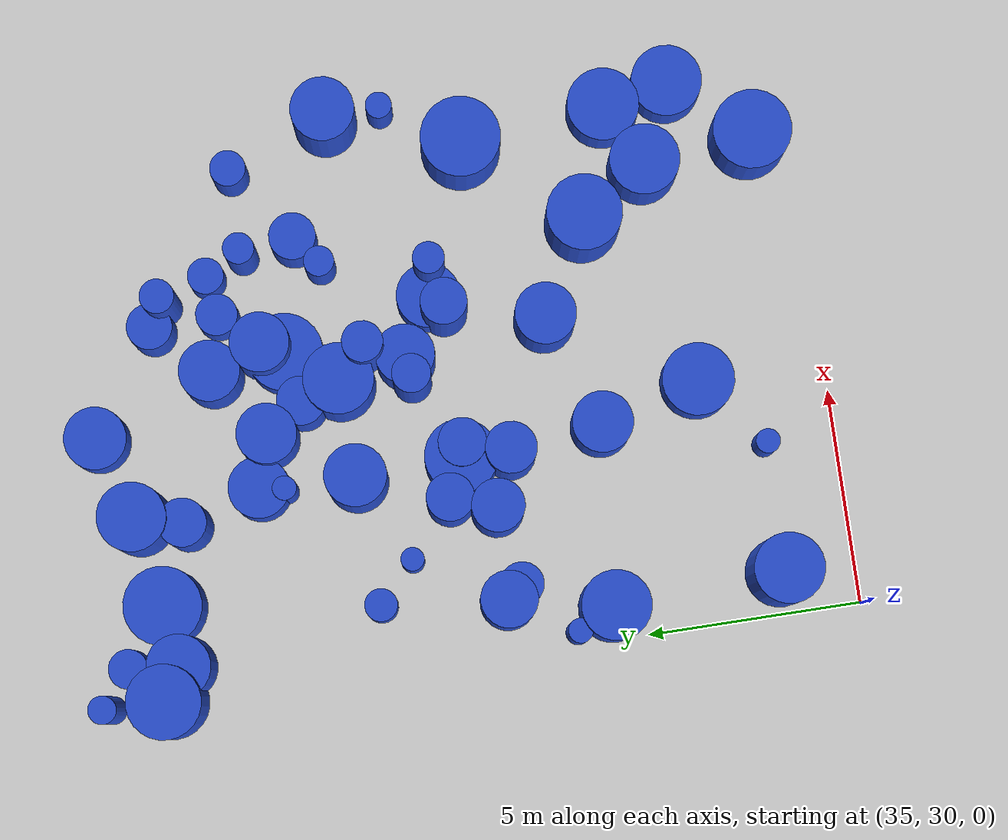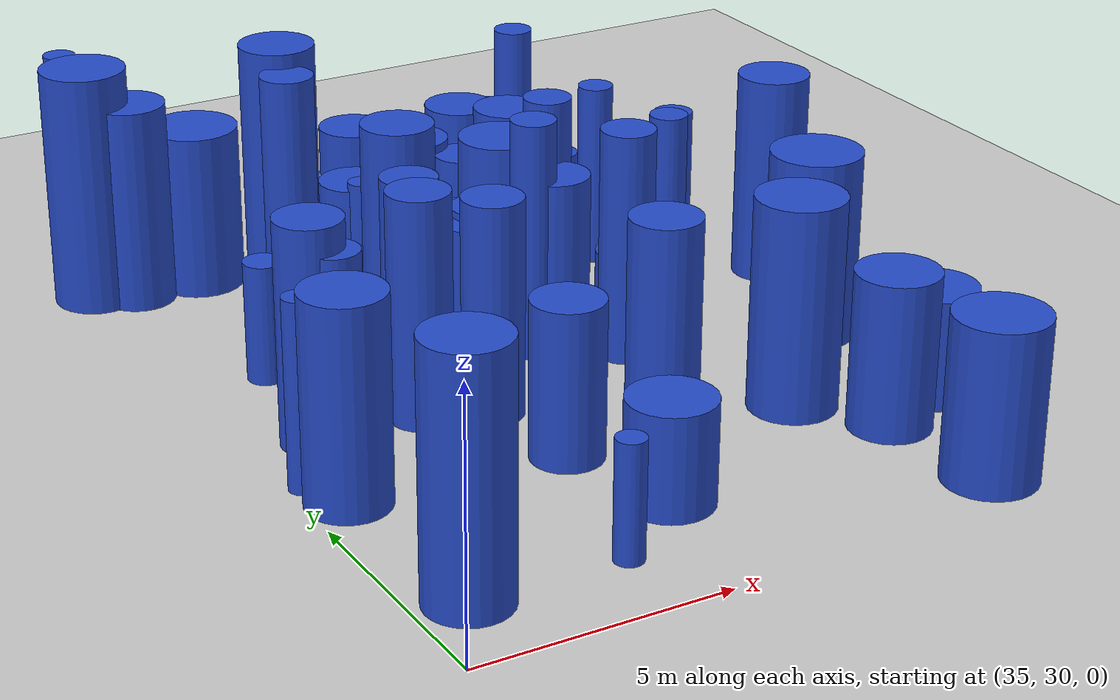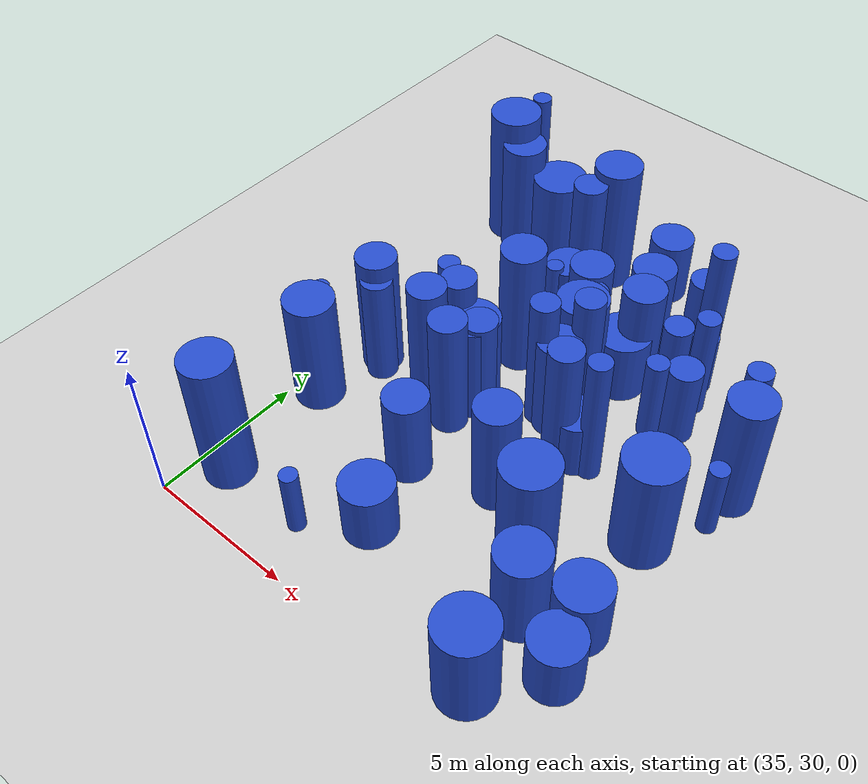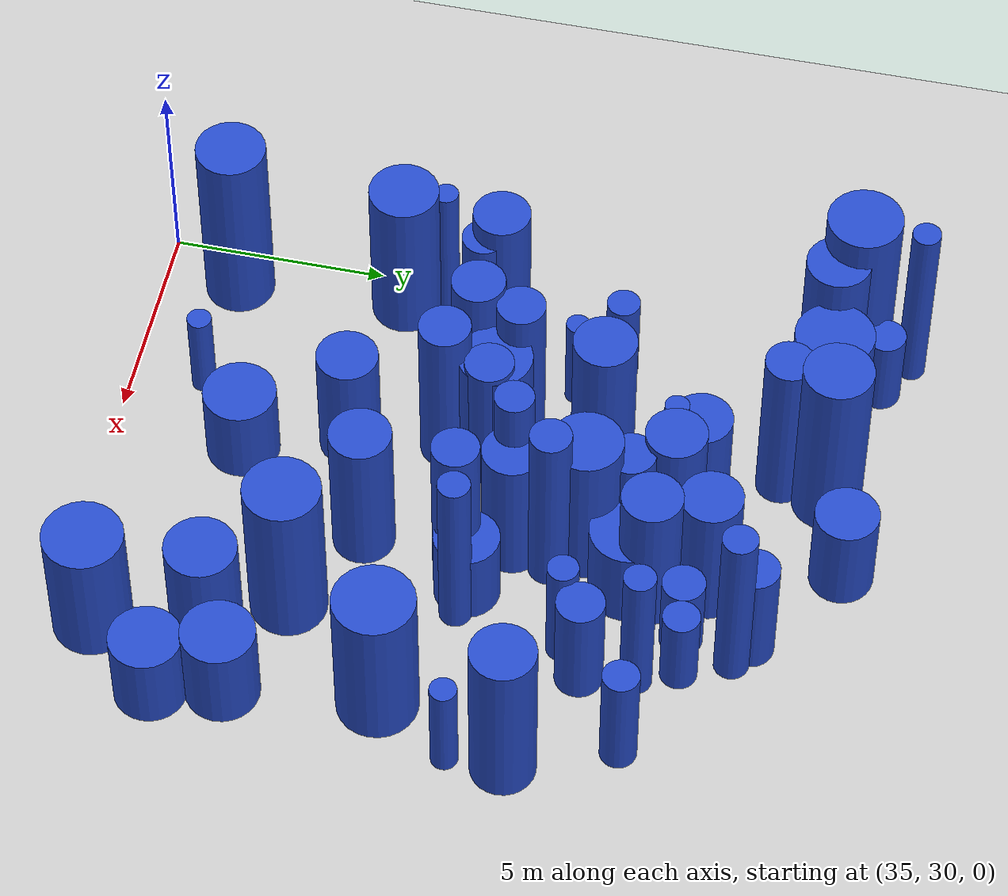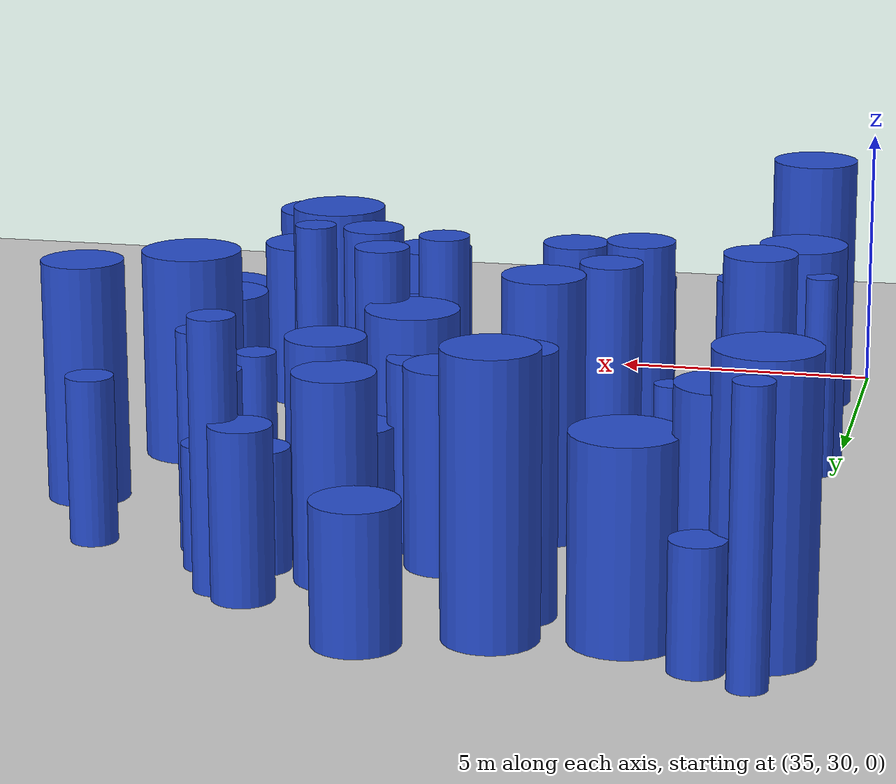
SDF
<sdf version="1.6">
 <world name="default">
  <model name="ground_plane">
   <static>1</static>
   <link name="link">
    <collision name="collision">
     <geometry><plane><normal>0 0 1</normal><size>100 100</size></plane></geometry>
     <surface><friction><ode><mu>100</mu><mu2>50</mu2></ode></friction></surface>
    </collision>
    <visual name="visual">
     <cast_shadows>0</cast_shadows>
     <geometry><plane><normal>0 0 1</normal><size>100 100</size></plane></geometry>
     <material>
      <script><uri>file://media/materials/scripts/gazebo.material</uri><name>Gazebo/Grey</name></script>
     </material>
    </visual>
   </link>
  </model>
  <model name="7">
   <static>0</static>
   <link name="link">
    <inertial>
     <mass>2</mass>
     <inertia>
      <ixx>0.928742</ixx>
      <ixy>0</ixy>
      <ixz>0</ixz>
      <iyy>0.928742</iyy>
      <iyz>0</iyz>
      <izz>0.0804717</izz>
     </inertia>
    </inertial>
    <collision name="collision">
     <geometry><cylinder><length>2.3089</length><radius>0.283675</radius></cylinder></geometry>
     <surface><contact><collide_without_contact>1</collide_without_contact></contact></surface>
    </collision>
    <visual name="visual">
     <geometry><cylinder><length>2.3089</length><radius>0.283675</radius></cylinder></geometry>
     <material>
      <script><uri>file://media/materials/scripts/gazebo.material</uri><name>Gazebo/Blue</name></script>
     </material>
    </visual>
    <gravity>0</gravity>
   </link>
   <pose>38.9814 31.6696 1.15445 0 -0 0</pose>
  </model>
  <model name="20">
   <static>0</static>
   <link name="link">
    <inertial>
     <mass>2</mass>
     <inertia><ixx>2.53516</ixx><ixy>0</ixy><ixz>0</ixz><iyy>2.53516</iyy><iyz>0</iyz><izz>0.131135</izz></inertia>
    </inertial>
    <collision name="collision">
     <geometry><cylinder><length>3.84936</length><radius>0.362126</radius></cylinder></geometry>
     <surface><contact><collide_without_contact>1</collide_without_contact></contact></surface>
    </collision>
    <visual name="visual">
     <geometry><cylinder><length>3.84936</length><radius>0.362126</radius></cylinder></geometry>
     <material>
      <script><uri>file://media/materials/scripts/gazebo.material</uri><name>Gazebo/Blue</name></script>
     </material>
    </visual>
    <gravity>0</gravity>
   </link>
   <pose>45.1067 43.0173 1.92468 0 -0 0</pose>
  </model>
  <model name="35">
   <static>0</static>
   <link name="link">
    <inertial>
     <mass>2</mass>
     <inertia><ixx>2.36887</ixx><ixy>0</ixy><ixz>0</ixz><iyy>2.36887</iyy><iyz>0</iyz><izz>0.828005</izz></inertia>
    </inertial>
    <collision name="collision">
     <geometry><cylinder><length>3.42479</length><radius>0.909948</radius></cylinder></geometry>
     <surface><contact><collide_without_contact>1</collide_without_contact></contact></surface>
    </collision>
    <visual name="visual">
     <geometry><cylinder><length>3.42479</length><radius>0.909948</radius></cylinder></geometry>
     <material>
      <script><uri>file://media/materials/scripts/gazebo.material</uri><name>Gazebo/Blue</name></script>
     </material>
    </visual>
    <gravity>0</gravity>
   </link>
   <pose>37.3259 45.9655 1.71239 0 -0 0</pose>
  </model>
  <model name="66">
   <static>0</static>
   <link name="link">
    <inertial>
     <mass>2</mass>
     <inertia><ixx>3.10959</ixx><ixy>0</ixy><ixz>0</ixz><iyy>3.10959</iyy><iyz>0</iyz><izz>0.654406</izz></inertia>
    </inertial>
    <collision name="collision">
     <geometry><cylinder><length>4.08587</length><radius>0.808954</radius></cylinder></geometry>
     <surface><contact><collide_without_contact>1</collide_without_contact></contact></surface>
    </collision>
    <visual name="visual">
     <geometry><cylinder><length>4.08587</length><radius>0.808954</radius></cylinder></geometry>
     <material>
      <script><uri>file://media/materials/scripts/gazebo.material</uri><name>Gazebo/Blue</name></script>
     </material>
    </visual>
    <gravity>0</gravity>
   </link>
   <pose>35.7565 35.7398 2.04293 0 -0 0</pose>
  </model>
  <model name="88">
   <static>0</static>
   <link name="link">
    <inertial>
     <mass>2</mass>
     <inertia><ixx>4.23171</ixx><ixy>0</ixy><ixz>0</ixz><iyy>4.23171</iyy><iyz>0</iyz><izz>0.655264</izz></inertia>
    </inertial>
    <collision name="collision">
     <geometry><cylinder><length>4.83988</length><radius>0.809484</radius></cylinder></geometry>
     <surface><contact><collide_without_contact>1</collide_without_contact></contact></surface>
    </collision>
    <visual name="visual">
     <geometry><cylinder><length>4.83988</length><radius>0.809484</radius></cylinder></geometry>
     <material>
      <script><uri>file://media/materials/scripts/gazebo.material</uri><name>Gazebo/Blue</name></script>
     </material>
    </visual>
    <gravity>0</gravity>
   </link>
   <pose>35.9826 31.7684 2.41994 0 -0 0</pose>
  </model>
  <model name="97">
   <static>0</static>
   <link name="link">
    <inertial>
     <mass>2</mass>
     <inertia><ixx>1.05903</ixx><ixy>0</ixy><ixz>0</ixz><iyy>1.05903</iyy><iyz>0</iyz><izz>0.709056</izz></inertia>
    </inertial>
    <collision name="collision">
     <geometry><cylinder><length>2.05596</length><radius>0.842054</radius></cylinder></geometry>
     <surface><contact><collide_without_contact>1</collide_without_contact></contact></surface>
    </collision>
    <visual name="visual">
     <geometry><cylinder><length>2.05596</length><radius>0.842054</radius></cylinder></geometry>
     <material>
      <script><uri>file://media/materials/scripts/gazebo.material</uri><name>Gazebo/Blue</name></script>
     </material>
    </visual>
    <gravity>0</gravity>
   </link>
   <pose>40.648 33.0252 1.02798 0 -0 0</pose>
  </model>
  <model name="106">
   <static>0</static>
   <link name="link">
    <inertial>
     <mass>2</mass>
     <inertia>
      <ixx>0.862159</ixx>
      <ixy>0</ixy>
      <ixz>0</ixz>
      <iyy>0.862159</iyy>
      <iyz>0</iyz>
      <izz>0.17685</izz>
     </inertia>
    </inertial>
    <collision name="collision">
     <geometry><cylinder><length>2.15462</length><radius>0.420535</radius></cylinder></geometry>
     <surface><contact><collide_without_contact>1</collide_without_contact></contact></surface>
    </collision>
    <visual name="visual">
     <geometry><cylinder><length>2.15462</length><radius>0.420535</radius></cylinder></geometry>
     <material>
      <script><uri>file://media/materials/scripts/gazebo.material</uri><name>Gazebo/Blue</name></script>
     </material>
    </visual>
    <gravity>0</gravity>
   </link>
   <pose>44.7238 43.9 1.07731 0 -0 0</pose>
  </model>
  <model name="107">
   <static>0</static>
   <link name="link">
    <inertial>
     <mass>2</mass>
     <inertia><ixx>4.47739</ixx><ixy>0</ixy><ixz>0</ixz><iyy>4.47739</iyy><iyz>0</iyz><izz>0.746232</izz></inertia>
    </inertial>
    <collision name="collision">
     <geometry><cylinder><length>4.96242</length><radius>0.863847</radius></cylinder></geometry>
     <surface><contact><collide_without_contact>1</collide_without_contact></contact></surface>
    </collision>
    <visual name="visual">
     <geometry><cylinder><length>4.96242</length><radius>0.863847</radius></cylinder></geometry>
     <material>
      <script><uri>file://media/materials/scripts/gazebo.material</uri><name>Gazebo/Blue</name></script>
     </material>
    </visual>
    <gravity>0</gravity>
   </link>
   <pose>35.1416 46.2041 2.48121 0 -0 0</pose>
  </model>
  <model name="110">
   <static>0</static>
   <link name="link">
    <inertial>
     <mass>2</mass>
     <inertia><ixx>1.17461</ixx><ixy>0</ixy><ixz>0</ixz><iyy>1.17461</iyy><iyz>0</iyz><izz>0.700789</izz></inertia>
    </inertial>
    <collision name="collision">
     <geometry><cylinder><length>2.2238</length><radius>0.837131</radius></cylinder></geometry>
     <surface><contact><collide_without_contact>1</collide_without_contact></contact></surface>
    </collision>
    <visual name="visual">
     <geometry><cylinder><length>2.2238</length><radius>0.837131</radius></cylinder></geometry>
     <material>
      <script><uri>file://media/materials/scripts/gazebo.material</uri><name>Gazebo/Blue</name></script>
     </material>
    </visual>
    <gravity>0</gravity>
   </link>
   <pose>47.2535 34.2331 1.1119 0 -0 0</pose>
  </model>
  <model name="112">
   <static>0</static>
   <link name="link">
    <inertial>
     <mass>2</mass>
     <inertia><ixx>1.47241</ixx><ixy>0</ixy><ixz>0</ixz><iyy>1.47241</iyy><iyz>0</iyz><izz>0.295905</izz></inertia>
    </inertial>
    <collision name="collision">
     <geometry><cylinder><length>2.81899</length><radius>0.543972</radius></cylinder></geometry>
     <surface><contact><collide_without_contact>1</collide_without_contact></contact></surface>
    </collision>
    <visual name="visual">
     <geometry><cylinder><length>2.81899</length><radius>0.543972</radius></cylinder></geometry>
     <material>
      <script><uri>file://media/materials/scripts/gazebo.material</uri><name>Gazebo/Blue</name></script>
     </material>
    </visual>
    <gravity>0</gravity>
   </link>
   <pose>45.2765 41.7788 1.4095 0 -0 0</pose>
  </model>
  <model name="121">
   <static>0</static>
   <link name="link">
    <inertial>
     <mass>2</mass>
     <inertia><ixx>2.51379</ixx><ixy>0</ixy><ixz>0</ixz><iyy>2.51379</iyy><iyz>0</iyz><izz>0.71824</izz></inertia>
    </inertial>
    <collision name="collision">
     <geometry><cylinder><length>3.59556</length><radius>0.84749</radius></cylinder></geometry>
     <surface><contact><collide_without_contact>1</collide_without_contact></contact></surface>
    </collision>
    <visual name="visual">
     <geometry><cylinder><length>3.59556</length><radius>0.84749</radius></cylinder></geometry>
     <material>
      <script><uri>file://media/materials/scripts/gazebo.material</uri><name>Gazebo/Blue</name></script>
     </material>
    </visual>
    <gravity>0</gravity>
   </link>
   <pose>39.6635 38.7081 1.79778 0 -0 0</pose>
  </model>
  <model name="124">
   <static>0</static>
   <link name="link">
    <inertial>
     <mass>2</mass>
     <inertia><ixx>3.98834</ixx><ixy>0</ixy><ixz>0</ixz><iyy>3.98834</iyy><iyz>0</iyz><izz>0.224128</izz></inertia>
    </inertial>
    <collision name="collision">
     <geometry><cylinder><length>4.82262</length><radius>0.473421</radius></cylinder></geometry>
     <surface><contact><collide_without_contact>1</collide_without_contact></contact></surface>
    </collision>
    <visual name="visual">
     <geometry><cylinder><length>4.82262</length><radius>0.473421</radius></cylinder></geometry>
     <material>
      <script><uri>file://media/materials/scripts/gazebo.material</uri><name>Gazebo/Blue</name></script>
     </material>
    </visual>
    <gravity>0</gravity>
   </link>
   <pose>42.5156 40.5416 2.41131 0 -0 0</pose>
  </model>
  <model name="145">
   <static>0</static>
   <link name="link">
    <inertial>
     <mass>2</mass>
     <inertia><ixx>1.43935</ixx><ixy>0</ixy><ixz>0</ixz><iyy>1.43935</iyy><iyz>0</iyz><izz>0.507497</izz></inertia>
    </inertial>
    <collision name="collision">
     <geometry><cylinder><length>2.66713</length><radius>0.712388</radius></cylinder></geometry>
     <surface><contact><collide_without_contact>1</collide_without_contact></contact></surface>
    </collision>
    <visual name="visual">
     <geometry><cylinder><length>2.66713</length><radius>0.712388</radius></cylinder></geometry>
     <material>
      <script><uri>file://media/materials/scripts/gazebo.material</uri><name>Gazebo/Blue</name></script>
     </material>
    </visual>
    <gravity>0</gravity>
   </link>
   <pose>39.6902 43.406 1.33357 0 -0 0</pose>
  </model>
  <model name="152">
   <static>0</static>
   <link name="link">
    <inertial>
     <mass>2</mass>
     <inertia><ixx>2.90918</ixx><ixy>0</ixy><ixz>0</ixz><iyy>2.90918</iyy><iyz>0</iyz><izz>0.669823</izz></inertia>
    </inertial>
    <collision name="collision">
     <geometry><cylinder><length>3.93009</length><radius>0.818427</radius></cylinder></geometry>
     <surface><contact><collide_without_contact>1</collide_without_contact></contact></surface>
    </collision>
    <visual name="visual">
     <geometry><cylinder><length>3.93009</length><radius>0.818427</radius></cylinder></geometry>
     <material>
      <script><uri>file://media/materials/scripts/gazebo.material</uri><name>Gazebo/Blue</name></script>
     </material>
    </visual>
    <gravity>0</gravity>
   </link>
   <pose>41.8241 41.2132 1.96505 0 -0 0</pose>
  </model>
  <model name="153">
   <static>0</static>
   <link name="link">
    <inertial>
     <mass>2</mass>
     <inertia><ixx>1.95745</ixx><ixy>0</ixy><ixz>0</ixz><iyy>1.95745</iyy><iyz>0</iyz><izz>0.663319</izz></inertia>
    </inertial>
    <collision name="collision">
     <geometry><cylinder><length>3.12326</length><radius>0.814444</radius></cylinder></geometry>
     <surface><contact><collide_without_contact>1</collide_without_contact></contact></surface>
    </collision>
    <visual name="visual">
     <geometry><cylinder><length>3.12326</length><radius>0.814444</radius></cylinder></geometry>
     <material>
      <script><uri>file://media/materials/scripts/gazebo.material</uri><name>Gazebo/Blue</name></script>
     </material>
    </visual>
    <gravity>0</gravity>
   </link>
   <pose>45.7767 33.5144 1.56163 0 -0 0</pose>
  </model>
  <model name="174">
   <static>0</static>
   <link name="link">
    <inertial>
     <mass>2</mass>
     <inertia><ixx>2.3673</ixx><ixy>0</ixy><ixz>0</ixz><iyy>2.3673</iyy><iyz>0</iyz><izz>0.496156</izz></inertia>
    </inertial>
    <collision name="collision">
     <geometry><cylinder><length>3.56586</length><radius>0.704384</radius></cylinder></geometry>
     <surface><contact><collide_without_contact>1</collide_without_contact></contact></surface>
    </collision>
    <visual name="visual">
     <geometry><cylinder><length>3.56586</length><radius>0.704384</radius></cylinder></geometry>
     <material>
      <script><uri>file://media/materials/scripts/gazebo.material</uri><name>Gazebo/Blue</name></script>
     </material>
    </visual>
    <gravity>0</gravity>
   </link>
   <pose>42.4641 44.1054 1.78293 0 -0 0</pose>
  </model>
  <model name="175">
   <static>0</static>
   <link name="link">
    <inertial>
     <mass>2</mass>
     <inertia>
      <ixx>1.13312</ixx>
      <ixy>0</ixy>
      <ixz>0</ixz>
      <iyy>1.13312</iyy>
      <iyz>0</iyz>
      <izz>0.0742613</izz>
     </inertia>
    </inertial>
    <collision name="collision">
     <geometry><cylinder><length>2.56436</length><radius>0.272509</radius></cylinder></geometry>
     <surface><contact><collide_without_contact>1</collide_without_contact></contact></surface>
    </collision>
    <visual name="visual">
     <geometry><cylinder><length>2.56436</length><radius>0.272509</radius></cylinder></geometry>
     <material>
      <script><uri>file://media/materials/scripts/gazebo.material</uri><name>Gazebo/Blue</name></script>
     </material>
    </visual>
    <gravity>0</gravity>
   </link>
   <pose>37.5311 40.1699 1.28218 0 -0 0</pose>
  </model>
  <model name="188">
   <static>0</static>
   <link name="link">
    <inertial>
     <mass>2</mass>
     <inertia><ixx>3.34287</ixx><ixy>0</ixy><ixz>0</ixz><iyy>3.34287</iyy><iyz>0</iyz><izz>0.355137</izz></inertia>
    </inertial>
    <collision name="collision">
     <geometry><cylinder><length>4.35796</length><radius>0.595934</radius></cylinder></geometry>
     <surface><contact><collide_without_contact>1</collide_without_contact></contact></surface>
    </collision>
    <visual name="visual">
     <geometry><cylinder><length>4.35796</length><radius>0.595934</radius></cylinder></geometry>
     <material>
      <script><uri>file://media/materials/scripts/gazebo.material</uri><name>Gazebo/Blue</name></script>
     </material>
    </visual>
    <gravity>0</gravity>
   </link>
   <pose>39.6522 37.563 2.17898 0 -0 0</pose>
  </model>
  <model name="193">
   <static>0</static>
   <link name="link">
    <inertial>
     <mass>2</mass>
     <inertia><ixx>2.66169</ixx><ixy>0</ixy><ixz>0</ixz><iyy>2.66169</iyy><iyz>0</iyz><izz>0.475672</izz></inertia>
    </inertial>
    <collision name="collision">
     <geometry><cylinder><length>3.81355</length><radius>0.68969</radius></cylinder></geometry>
     <surface><contact><collide_without_contact>1</collide_without_contact></contact></surface>
    </collision>
    <visual name="visual">
     <geometry><cylinder><length>3.81355</length><radius>0.68969</radius></cylinder></geometry>
     <material>
      <script><uri>file://media/materials/scripts/gazebo.material</uri><name>Gazebo/Blue</name></script>
     </material>
    </visual>
    <gravity>0</gravity>
   </link>
   <pose>42.9227 42.8711 1.90677 0 -0 0</pose>
  </model>
  <model name="195">
   <static>0</static>
   <link name="link">
    <inertial>
     <mass>2</mass>
     <inertia>
      <ixx>1.20845</ixx>
      <ixy>0</ixy>
      <ixz>0</ixz>
      <iyy>1.20845</iyy>
      <iyz>0</iyz>
      <izz>0.0930295</izz>
     </inertia>
    </inertial>
    <collision name="collision">
     <geometry><cylinder><length>2.64038</length><radius>0.305007</radius></cylinder></geometry>
     <surface><contact><collide_without_contact>1</collide_without_contact></contact></surface>
    </collision>
    <visual name="visual">
     <geometry><cylinder><length>2.64038</length><radius>0.305007</radius></cylinder></geometry>
     <material>
      <script><uri>file://media/materials/scripts/gazebo.material</uri><name>Gazebo/Blue</name></script>
     </material>
    </visual>
    <gravity>0</gravity>
   </link>
   <pose>47.9745 39.3602 1.32019 0 -0 0</pose>
  </model>
  <model name="196">
   <static>0</static>
   <link name="link">
    <inertial>
     <mass>2</mass>
     <inertia><ixx>2.40186</ixx><ixy>0</ixy><ixz>0</ixz><iyy>2.40186</iyy><iyz>0</iyz><izz>0.474672</izz></inertia>
    </inertial>
    <collision name="collision">
     <geometry><cylinder><length>3.60377</length><radius>0.688964</radius></cylinder></geometry>
     <surface><contact><collide_without_contact>1</collide_without_contact></contact></surface>
    </collision>
    <visual name="visual">
     <geometry><cylinder><length>3.60377</length><radius>0.688964</radius></cylinder></geometry>
     <material>
      <script><uri>file://media/materials/scripts/gazebo.material</uri><name>Gazebo/Blue</name></script>
     </material>
    </visual>
    <gravity>0</gravity>
   </link>
   <pose>42.1627 39.6268 1.80188 0 -0 0</pose>
  </model>
  <model name="203">
   <static>0</static>
   <link name="link">
    <inertial>
     <mass>2</mass>
     <inertia>
      <ixx>1.39088</ixx>
      <ixy>0</ixy>
      <ixz>0</ixz>
      <iyy>1.39088</iyy>
      <iyz>0</iyz>
      <izz>0.0793249</izz>
     </inertia>
    </inertial>
    <collision name="collision">
     <geometry><cylinder><length>2.84733</length><radius>0.281647</radius></cylinder></geometry>
     <surface><contact><collide_without_contact>1</collide_without_contact></contact></surface>
    </collision>
    <visual name="visual">
     <geometry><cylinder><length>2.84733</length><radius>0.281647</radius></cylinder></geometry>
     <material>
      <script><uri>file://media/materials/scripts/gazebo.material</uri><name>Gazebo/Blue</name></script>
     </material>
    </visual>
    <gravity>0</gravity>
   </link>
   <pose>39.5835 42.8247 1.42367 0 -0 0</pose>
  </model>
  <model name="205">
   <static>0</static>
   <link name="link">
    <inertial>
     <mass>2</mass>
     <inertia><ixx>3.81012</ixx><ixy>0</ixy><ixz>0</ixz><iyy>3.81012</iyy><iyz>0</iyz><izz>0.29014</izz></inertia>
    </inertial>
    <collision name="collision">
     <geometry><cylinder><length>4.68938</length><radius>0.538647</radius></cylinder></geometry>
     <surface><contact><collide_without_contact>1</collide_without_contact></contact></surface>
    </collision>
    <visual name="visual">
     <geometry><cylinder><length>4.68938</length><radius>0.538647</radius></cylinder></geometry>
     <material>
      <script><uri>file://media/materials/scripts/gazebo.material</uri><name>Gazebo/Blue</name></script>
     </material>
    </visual>
    <gravity>0</gravity>
   </link>
   <pose>43.1526 38.5787 2.34469 0 -0 0</pose>
  </model>
  <model name="212">
   <static>0</static>
   <link name="link">
    <inertial>
     <mass>2</mass>
     <inertia><ixx>0.95686</ixx><ixy>0</ixy><ixz>0</ixz><iyy>0.95686</iyy><iyz>0</iyz><izz>0.556705</izz></inertia>
    </inertial>
    <collision name="collision">
     <geometry><cylinder><length>2.01768</length><radius>0.746127</radius></cylinder></geometry>
     <surface><contact><collide_without_contact>1</collide_without_contact></contact></surface>
    </collision>
    <visual name="visual">
     <geometry><cylinder><length>2.01768</length><radius>0.746127</radius></cylinder></geometry>
     <material>
      <script><uri>file://media/materials/scripts/gazebo.material</uri><name>Gazebo/Blue</name></script>
     </material>
    </visual>
    <gravity>0</gravity>
   </link>
   <pose>43.5083 38.887 1.00884 0 -0 0</pose>
  </model>
  <model name="215">
   <static>0</static>
   <link name="link">
    <inertial>
     <mass>2</mass>
     <inertia><ixx>3.82841</ixx><ixy>0</ixy><ixz>0</ixz><iyy>3.82841</iyy><iyz>0</iyz><izz>0.519269</izz></inertia>
    </inertial>
    <collision name="collision">
     <geometry><cylinder><length>4.62738</length><radius>0.720604</radius></cylinder></geometry>
     <surface><contact><collide_without_contact>1</collide_without_contact></contact></surface>
    </collision>
    <visual name="visual">
     <geometry><cylinder><length>4.62738</length><radius>0.720604</radius></cylinder></geometry>
     <material>
      <script><uri>file://media/materials/scripts/gazebo.material</uri><name>Gazebo/Blue</name></script>
     </material>
    </visual>
    <gravity>0</gravity>
   </link>
   <pose>39.5577 41.157 2.31369 0 -0 0</pose>
  </model>
  <model name="226">
   <static>0</static>
   <link name="link">
    <inertial>
     <mass>2</mass>
     <inertia><ixx>2.91781</ixx><ixy>0</ixy><ixz>0</ixz><iyy>2.91781</iyy><iyz>0</iyz><izz>0.850646</izz></inertia>
    </inertial>
    <collision name="collision">
     <geometry><cylinder><length>3.86716</length><radius>0.922304</radius></cylinder></geometry>
     <surface><contact><collide_without_contact>1</collide_without_contact></contact></surface>
    </collision>
    <visual name="visual">
     <geometry><cylinder><length>3.86716</length><radius>0.922304</radius></cylinder></geometry>
     <material>
      <script><uri>file://media/materials/scripts/gazebo.material</uri><name>Gazebo/Blue</name></script>
     </material>
    </visual>
    <gravity>0</gravity>
   </link>
   <pose>46.8669 37.6226 1.93358 0 -0 0</pose>
  </model>
  <model name="241">
   <static>0</static>
   <link name="link">
    <inertial>
     <mass>2</mass>
     <inertia><ixx>2.48957</ixx><ixy>0</ixy><ixz>0</ixz><iyy>2.48957</iyy><iyz>0</iyz><izz>0.314299</izz></inertia>
    </inertial>
    <collision name="collision">
     <geometry><cylinder><length>3.74092</length><radius>0.560623</radius></cylinder></geometry>
     <surface><contact><collide_without_contact>1</collide_without_contact></contact></surface>
    </collision>
    <visual name="visual">
     <geometry><cylinder><length>3.74092</length><radius>0.560623</radius></cylinder></geometry>
     <material>
      <script><uri>file://media/materials/scripts/gazebo.material</uri><name>Gazebo/Blue</name></script>
     </material>
    </visual>
    <gravity>0</gravity>
   </link>
   <pose>39.9707 38.639 1.87046 0 -0 0</pose>
  </model>
  <model name="249">
   <static>0</static>
   <link name="link">
    <inertial>
     <mass>2</mass>
     <inertia><ixx>2.14935</ixx><ixy>0</ixy><ixz>0</ixz><iyy>2.14935</iyy><iyz>0</iyz><izz>0.828325</izz></inertia>
    </inertial>
    <collision name="collision">
     <geometry><cylinder><length>3.22663</length><radius>0.910124</radius></cylinder></geometry>
     <surface><contact><collide_without_contact>1</collide_without_contact></contact></surface>
    </collision>
    <visual name="visual">
     <geometry><cylinder><length>3.22663</length><radius>0.910124</radius></cylinder></geometry>
     <material>
      <script><uri>file://media/materials/scripts/gazebo.material</uri><name>Gazebo/Blue</name></script>
     </material>
    </visual>
    <gravity>0</gravity>
   </link>
   <pose>46.0739 30.9725 1.61331 0 -0 0</pose>
  </model>
  <model name="266">
   <static>0</static>
   <link name="link">
    <inertial>
     <mass>2</mass>
     <inertia>
      <ixx>0.863113</ixx>
      <ixy>0</ixy>
      <ixz>0</ixz>
      <iyy>0.863113</iyy>
      <iyz>0</iyz>
      <izz>0.236527</izz>
     </inertia>
    </inertial>
    <collision name="collision">
     <geometry><cylinder><length>2.11402</length><radius>0.486341</radius></cylinder></geometry>
     <surface><contact><collide_without_contact>1</collide_without_contact></contact></surface>
    </collision>
    <visual name="visual">
     <geometry><cylinder><length>2.11402</length><radius>0.486341</radius></cylinder></geometry>
     <material>
      <script><uri>file://media/materials/scripts/gazebo.material</uri><name>Gazebo/Blue</name></script>
     </material>
    </visual>
    <gravity>0</gravity>
   </link>
   <pose>43.8035 43.7832 1.05701 0 -0 0</pose>
  </model>
  <model name="272">
   <static>0</static>
   <link name="link">
    <inertial>
     <mass>2</mass>
     <inertia><ixx>1.18932</ixx><ixy>0</ixy><ixz>0</ixz><iyy>1.18932</iyy><iyz>0</iyz><izz>0.528316</izz></inertia>
    </inertial>
    <collision name="collision">
     <geometry><cylinder><length>2.35605</length><radius>0.726853</radius></cylinder></geometry>
     <surface><contact><collide_without_contact>1</collide_without_contact></contact></surface>
    </collision>
    <visual name="visual">
     <geometry><cylinder><length>2.35605</length><radius>0.726853</radius></cylinder></geometry>
     <material>
      <script><uri>file://media/materials/scripts/gazebo.material</uri><name>Gazebo/Blue</name></script>
     </material>
    </visual>
    <gravity>0</gravity>
   </link>
   <pose>41.3948 46.9684 1.17802 0 -0 0</pose>
  </model>
  <model name="277">
   <static>0</static>
   <link name="link">
    <inertial>
     <mass>2</mass>
     <inertia>
      <ixx>2.33928</ixx>
      <ixy>0</ixy>
      <ixz>0</ixz>
      <iyy>2.33928</iyy>
      <iyz>0</iyz>
      <izz>0.0820859</izz>
     </inertia>
    </inertial>
    <collision name="collision">
     <geometry><cylinder><length>3.71341</length><radius>0.286506</radius></cylinder></geometry>
     <surface><contact><collide_without_contact>1</collide_without_contact></contact></surface>
    </collision>
    <visual name="visual">
     <geometry><cylinder><length>3.71341</length><radius>0.286506</radius></cylinder></geometry>
     <material>
      <script><uri>file://media/materials/scripts/gazebo.material</uri><name>Gazebo/Blue</name></script>
     </material>
    </visual>
    <gravity>0</gravity>
   </link>
   <pose>35.3118 36.6254 1.8567 0 -0 0</pose>
  </model>
  <model name="279">
   <static>0</static>
   <link name="link">
    <inertial>
     <mass>2</mass>
     <inertia><ixx>2.6599</ixx><ixy>0</ixy><ixz>0</ixz><iyy>2.6599</iyy><iyz>0</iyz><izz>0.254927</izz></inertia>
    </inertial>
    <collision name="collision">
     <geometry><cylinder><length>3.89802</length><radius>0.504903</radius></cylinder></geometry>
     <surface><contact><collide_without_contact>1</collide_without_contact></contact></surface>
    </collision>
    <visual name="visual">
     <geometry><cylinder><length>3.89802</length><radius>0.504903</radius></cylinder></geometry>
     <material>
      <script><uri>file://media/materials/scripts/gazebo.material</uri><name>Gazebo/Blue</name></script>
     </material>
    </visual>
    <gravity>0</gravity>
   </link>
   <pose>36.5624 37.7845 1.94901 0 -0 0</pose>
  </model>
  <model name="285">
   <static>0</static>
   <link name="link">
    <inertial>
     <mass>2</mass>
     <inertia><ixx>1.88765</ixx><ixy>0</ixy><ixz>0</ixz><iyy>1.88765</iyy><iyz>0</iyz><izz>0.500991</izz></inertia>
    </inertial>
    <collision name="collision">
     <geometry><cylinder><length>3.13415</length><radius>0.707807</radius></cylinder></geometry>
     <surface><contact><collide_without_contact>1</collide_without_contact></contact></surface>
    </collision>
    <visual name="visual">
     <geometry><cylinder><length>3.13415</length><radius>0.707807</radius></cylinder></geometry>
     <material>
      <script><uri>file://media/materials/scripts/gazebo.material</uri><name>Gazebo/Blue</name></script>
     </material>
    </visual>
    <gravity>0</gravity>
   </link>
   <pose>39.9651 35.3847 1.56708 0 -0 0</pose>
  </model>
  <model name="294">
   <static>0</static>
   <link name="link">
    <inertial>
     <mass>2</mass>
     <inertia><ixx>1.99722</ixx><ixy>0</ixy><ixz>0</ixz><iyy>1.99722</iyy><iyz>0</iyz><izz>0.322613</izz></inertia>
    </inertial>
    <collision name="collision">
     <geometry><cylinder><length>3.31896</length><radius>0.56799</radius></cylinder></geometry>
     <surface><contact><collide_without_contact>1</collide_without_contact></contact></surface>
    </collision>
    <visual name="visual">
     <geometry><cylinder><length>3.31896</length><radius>0.56799</radius></cylinder></geometry>
     <material>
      <script><uri>file://media/materials/scripts/gazebo.material</uri><name>Gazebo/Blue</name></script>
     </material>
    </visual>
    <gravity>0</gravity>
   </link>
   <pose>41.4824 42.1382 1.65948 0 -0 0</pose>
  </model>
  <model name="299">
   <static>0</static>
   <link name="link">
    <inertial>
     <mass>2</mass>
     <inertia><ixx>4.06155</ixx><ixy>0</ixy><ixz>0</ixz><iyy>4.06155</iyy><iyz>0</iyz><izz>0.630446</izz></inertia>
    </inertial>
    <collision name="collision">
     <geometry><cylinder><length>4.74109</length><radius>0.794006</radius></cylinder></geometry>
     <surface><contact><collide_without_contact>1</collide_without_contact></contact></surface>
    </collision>
    <visual name="visual">
     <geometry><cylinder><length>4.74109</length><radius>0.794006</radius></cylinder></geometry>
     <material>
      <script><uri>file://media/materials/scripts/gazebo.material</uri><name>Gazebo/Blue</name></script>
     </material>
    </visual>
    <gravity>0</gravity>
   </link>
   <pose>39.3908 46.306 2.37055 0 -0 0</pose>
  </model>
  <model name="310">
   <static>0</static>
   <link name="link">
    <inertial>
     <mass>2</mass>
     <inertia><ixx>3.37169</ixx><ixy>0</ixy><ixz>0</ixz><iyy>3.37169</iyy><iyz>0</iyz><izz>0.307818</izz></inertia>
    </inertial>
    <collision name="collision">
     <geometry><cylinder><length>4.39394</length><radius>0.554813</radius></cylinder></geometry>
     <surface><contact><collide_without_contact>1</collide_without_contact></contact></surface>
    </collision>
    <visual name="visual">
     <geometry><cylinder><length>4.39394</length><radius>0.554813</radius></cylinder></geometry>
     <material>
      <script><uri>file://media/materials/scripts/gazebo.material</uri><name>Gazebo/Blue</name></script>
     </material>
    </visual>
    <gravity>0</gravity>
   </link>
   <pose>38.7474 39.1027 2.19697 0 -0 0</pose>
  </model>
  <model name="318">
   <static>0</static>
   <link name="link">
    <inertial>
     <mass>2</mass>
     <inertia><ixx>3.99946</ixx><ixy>0</ixy><ixz>0</ixz><iyy>3.99946</iyy><iyz>0</iyz><izz>0.201687</izz></inertia>
    </inertial>
    <collision name="collision">
     <geometry><cylinder><length>4.8365</length><radius>0.449096</radius></cylinder></geometry>
     <surface><contact><collide_without_contact>1</collide_without_contact></contact></surface>
    </collision>
    <visual name="visual">
     <geometry><cylinder><length>4.8365</length><radius>0.449096</radius></cylinder></geometry>
     <material>
      <script><uri>file://media/materials/scripts/gazebo.material</uri><name>Gazebo/Blue</name></script>
     </material>
    </visual>
    <gravity>0</gravity>
   </link>
   <pose>41.6373 39.5539 2.41825 0 -0 0</pose>
  </model>
  <model name="327">
   <static>0</static>
   <link name="link">
    <inertial>
     <mass>2</mass>
     <inertia><ixx>2.7036</ixx><ixy>0</ixy><ixz>0</ixz><iyy>2.7036</iyy><iyz>0</iyz><izz>0.503856</izz></inertia>
    </inertial>
    <collision name="collision">
     <geometry><cylinder><length>3.83536</length><radius>0.709828</radius></cylinder></geometry>
     <surface><contact><collide_without_contact>1</collide_without_contact></contact></surface>
    </collision>
    <visual name="visual">
     <geometry><cylinder><length>3.83536</length><radius>0.709828</radius></cylinder></geometry>
     <material>
      <script><uri>file://media/materials/scripts/gazebo.material</uri><name>Gazebo/Blue</name></script>
     </material>
    </visual>
    <gravity>0</gravity>
   </link>
   <pose>42.5795 36.3138 1.91768 0 -0 0</pose>
  </model>
  <model name="342">
   <static>0</static>
   <link name="link">
    <inertial>
     <mass>2</mass>
     <inertia><ixx>2.27213</ixx><ixy>0</ixy><ixz>0</ixz><iyy>2.27213</iyy><iyz>0</iyz><izz>0.488274</izz></inertia>
    </inertial>
    <collision name="collision">
     <geometry><cylinder><length>3.48826</length><radius>0.698766</radius></cylinder></geometry>
     <surface><contact><collide_without_contact>1</collide_without_contact></contact></surface>
    </collision>
    <visual name="visual">
     <geometry><cylinder><length>3.48826</length><radius>0.698766</radius></cylinder></geometry>
     <material>
      <script><uri>file://media/materials/scripts/gazebo.material</uri><name>Gazebo/Blue</name></script>
     </material>
    </visual>
    <gravity>0</gravity>
   </link>
   <pose>40.8503 43.029 1.74413 0 -0 0</pose>
  </model>
  <model name="346">
   <static>0</static>
   <link name="link">
    <inertial>
     <mass>2</mass>
     <inertia><ixx>3.67135</ixx><ixy>0</ixy><ixz>0</ixz><iyy>3.67135</iyy><iyz>0</iyz><izz>0.157071</izz></inertia>
    </inertial>
    <collision name="collision">
     <geometry><cylinder><length>4.64294</length><radius>0.396322</radius></cylinder></geometry>
     <surface><contact><collide_without_contact>1</collide_without_contact></contact></surface>
    </collision>
    <visual name="visual">
     <geometry><cylinder><length>4.64294</length><radius>0.396322</radius></cylinder></geometry>
     <material>
      <script><uri>file://media/materials/scripts/gazebo.material</uri><name>Gazebo/Blue</name></script>
     </material>
    </visual>
    <gravity>0</gravity>
   </link>
   <pose>44.2491 44.9931 2.32147 0 -0 0</pose>
  </model>
  <model name="347">
   <static>0</static>
   <link name="link">
    <inertial>
     <mass>2</mass>
     <inertia><ixx>1.57898</ixx><ixy>0</ixy><ixz>0</ixz><iyy>1.57898</iyy><iyz>0</iyz><izz>0.124314</izz></inertia>
    </inertial>
    <collision name="collision">
     <geometry><cylinder><length>3.01677</length><radius>0.352583</radius></cylinder></geometry>
     <surface><contact><collide_without_contact>1</collide_without_contact></contact></surface>
    </collision>
    <visual name="visual">
     <geometry><cylinder><length>3.01677</length><radius>0.352583</radius></cylinder></geometry>
     <material>
      <script><uri>file://media/materials/scripts/gazebo.material</uri><name>Gazebo/Blue</name></script>
     </material>
    </visual>
    <gravity>0</gravity>
   </link>
   <pose>44.6032 41.2586 1.50839 0 -0 0</pose>
  </model>
  <model name="362">
   <static>0</static>
   <link name="link">
    <inertial>
     <mass>2</mass>
     <inertia><ixx>3.4456</ixx><ixy>0</ixy><ixz>0</ixz><iyy>3.4456</iyy><iyz>0</iyz><izz>0.313918</izz></inertia>
    </inertial>
    <collision name="collision">
     <geometry><cylinder><length>4.44205</length><radius>0.560284</radius></cylinder></geometry>
     <surface><contact><collide_without_contact>1</collide_without_contact></contact></surface>
    </collision>
    <visual name="visual">
     <geometry><cylinder><length>4.44205</length><radius>0.560284</radius></cylinder></geometry>
     <material>
      <script><uri>file://media/materials/scripts/gazebo.material</uri><name>Gazebo/Blue</name></script>
     </material>
    </visual>
    <gravity>0</gravity>
   </link>
   <pose>39.0997 45.2009 2.22103 0 -0 0</pose>
  </model>
  <model name="401">
   <static>0</static>
   <link name="link">
    <inertial>
     <mass>2</mass>
     <inertia><ixx>3.80388</ixx><ixy>0</ixy><ixz>0</ixz><iyy>3.80388</iyy><iyz>0</iyz><izz>0.134551</izz></inertia>
    </inertial>
    <collision name="collision">
     <geometry><cylinder><length>4.73494</length><radius>0.366812</radius></cylinder></geometry>
     <surface><contact><collide_without_contact>1</collide_without_contact></contact></surface>
    </collision>
    <visual name="visual">
     <geometry><cylinder><length>4.73494</length><radius>0.366812</radius></cylinder></geometry>
     <material>
      <script><uri>file://media/materials/scripts/gazebo.material</uri><name>Gazebo/Blue</name></script>
     </material>
    </visual>
    <gravity>0</gravity>
   </link>
   <pose>44.1706 38.7688 2.36747 0 -0 0</pose>
  </model>
  <model name="410">
   <static>0</static>
   <link name="link">
    <inertial>
     <mass>2</mass>
     <inertia><ixx>3.26246</ixx><ixy>0</ixy><ixz>0</ixz><iyy>3.26246</iyy><iyz>0</iyz><izz>0.551343</izz></inertia>
    </inertial>
    <collision name="collision">
     <geometry><cylinder><length>4.23329</length><radius>0.742525</radius></cylinder></geometry>
     <surface><contact><collide_without_contact>1</collide_without_contact></contact></surface>
    </collision>
    <visual name="visual">
     <geometry><cylinder><length>4.23329</length><radius>0.742525</radius></cylinder></geometry>
     <material>
      <script><uri>file://media/materials/scripts/gazebo.material</uri><name>Gazebo/Blue</name></script>
     </material>
    </visual>
    <gravity>0</gravity>
   </link>
   <pose>35.8943 45.7776 2.11665 0 -0 0</pose>
  </model>
  <model name="412">
   <static>0</static>
   <link name="link">
    <inertial>
     <mass>2</mass>
     <inertia>
      <ixx>0.851968</ixx>
      <ixy>0</ixy>
      <ixz>0</ixz>
      <iyy>0.851968</iyy>
      <iyz>0</iyz>
      <izz>0.211796</izz>
     </inertia>
    </inertial>
    <collision name="collision">
     <geometry><cylinder><length>2.11575</length><radius>0.460213</radius></cylinder></geometry>
     <surface><contact><collide_without_contact>1</collide_without_contact></contact></surface>
    </collision>
    <visual name="visual">
     <geometry><cylinder><length>2.11575</length><radius>0.460213</radius></cylinder></geometry>
     <material>
      <script><uri>file://media/materials/scripts/gazebo.material</uri><name>Gazebo/Blue</name></script>
     </material>
    </visual>
    <gravity>0</gravity>
   </link>
   <pose>36.0379 47.0178 1.05788 0 -0 0</pose>
  </model>
  <model name="413">
   <static>0</static>
   <link name="link">
    <inertial>
     <mass>2</mass>
     <inertia><ixx>3.42052</ixx><ixy>0</ixy><ixz>0</ixz><iyy>3.42052</iyy><iyz>0</iyz><izz>0.539016</izz></inertia>
    </inertial>
    <collision name="collision">
     <geometry><cylinder><length>4.34811</length><radius>0.734177</radius></cylinder></geometry>
     <surface><contact><collide_without_contact>1</collide_without_contact></contact></surface>
    </collision>
    <visual name="visual">
     <geometry><cylinder><length>4.34811</length><radius>0.734177</radius></cylinder></geometry>
     <material>
      <script><uri>file://media/materials/scripts/gazebo.material</uri><name>Gazebo/Blue</name></script>
     </material>
    </visual>
    <gravity>0</gravity>
   </link>
   <pose>47.9251 40.6448 2.17406 0 -0 0</pose>
  </model>
  <model name="415">
   <static>0</static>
   <link name="link">
    <inertial>
     <mass>2</mass>
     <inertia><ixx>1.51496</ixx><ixy>0</ixy><ixz>0</ixz><iyy>1.51496</iyy><iyz>0</iyz><izz>0.171166</izz></inertia>
    </inertial>
    <collision name="collision">
     <geometry><cylinder><length>2.92852</length><radius>0.413722</radius></cylinder></geometry>
     <surface><contact><collide_without_contact>1</collide_without_contact></contact></surface>
    </collision>
    <visual name="visual">
     <geometry><cylinder><length>2.92852</length><radius>0.413722</radius></cylinder></geometry>
     <material>
      <script><uri>file://media/materials/scripts/gazebo.material</uri><name>Gazebo/Blue</name></script>
     </material>
    </visual>
    <gravity>0</gravity>
   </link>
   <pose>47.0348 43.0055 1.46426 0 -0 0</pose>
  </model>
  <model name="420">
   <static>0</static>
   <link name="link">
    <inertial>
     <mass>2</mass>
     <inertia><ixx>3.91805</ixx><ixy>0</ixy><ixz>0</ixz><iyy>3.91805</iyy><iyz>0</iyz><izz>0.107186</izz></inertia>
    </inertial>
    <collision name="collision">
     <geometry><cylinder><length>4.81526</length><radius>0.327392</radius></cylinder></geometry>
     <surface><contact><collide_without_contact>1</collide_without_contact></contact></surface>
    </collision>
    <visual name="visual">
     <geometry><cylinder><length>4.81526</length><radius>0.327392</radius></cylinder></geometry>
     <material>
      <script><uri>file://media/materials/scripts/gazebo.material</uri><name>Gazebo/Blue</name></script>
     </material>
    </visual>
    <gravity>0</gravity>
   </link>
   <pose>35.1717 47.6023 2.40763 0 -0 0</pose>
  </model>
  <model name="421">
   <static>0</static>
   <link name="link">
    <inertial>
     <mass>2</mass>
     <inertia><ixx>3.38673</ixx><ixy>0</ixy><ixz>0</ixz><iyy>3.38673</iyy><iyz>0</iyz><izz>0.763166</izz></inertia>
    </inertial>
    <collision name="collision">
     <geometry><cylinder><length>4.24628</length><radius>0.873593</radius></cylinder></geometry>
     <surface><contact><collide_without_contact>1</collide_without_contact></contact></surface>
    </collision>
    <visual name="visual">
     <geometry><cylinder><length>4.24628</length><radius>0.873593</radius></cylinder></geometry>
     <material>
      <script><uri>file://media/materials/scripts/gazebo.material</uri><name>Gazebo/Blue</name></script>
     </material>
    </visual>
    <gravity>0</gravity>
   </link>
   <pose>44.6987 35.0969 2.12314 0 -0 0</pose>
  </model>
  <model name="427">
   <static>0</static>
   <link name="link">
    <inertial>
     <mass>2</mass>
     <inertia><ixx>3.65251</ixx><ixy>0</ixy><ixz>0</ixz><iyy>3.65251</iyy><iyz>0</iyz><izz>0.378745</izz></inertia>
    </inertial>
    <collision name="collision">
     <geometry><cylinder><length>4.55838</length><radius>0.615423</radius></cylinder></geometry>
     <surface><contact><collide_without_contact>1</collide_without_contact></contact></surface>
    </collision>
    <visual name="visual">
     <geometry><cylinder><length>4.55838</length><radius>0.615423</radius></cylinder></geometry>
     <material>
      <script><uri>file://media/materials/scripts/gazebo.material</uri><name>Gazebo/Blue</name></script>
     </material>
    </visual>
    <gravity>0</gravity>
   </link>
   <pose>38.3958 38.0553 2.27919 0 -0 0</pose>
  </model>
  <model name="435">
   <static>0</static>
   <link name="link">
    <inertial>
     <mass>2</mass>
     <inertia><ixx>1.58852</ixx><ixy>0</ixy><ixz>0</ixz><iyy>1.58852</iyy><iyz>0</iyz><izz>0.278693</izz></inertia>
    </inertial>
    <collision name="collision">
     <geometry><cylinder><length>2.94874</length><radius>0.527914</radius></cylinder></geometry>
     <surface><contact><collide_without_contact>1</collide_without_contact></contact></surface>
    </collision>
    <visual name="visual">
     <geometry><cylinder><length>2.94874</length><radius>0.527914</radius></cylinder></geometry>
     <material>
      <script><uri>file://media/materials/scripts/gazebo.material</uri><name>Gazebo/Blue</name></script>
     </material>
    </visual>
    <gravity>0</gravity>
   </link>
   <pose>43.7067 45.3269 1.47437 0 -0 0</pose>
  </model>
  <model name="452">
   <static>0</static>
   <link name="link">
    <inertial>
     <mass>2</mass>
     <inertia><ixx>1.02057</ixx><ixy>0</ixy><ixz>0</ixz><iyy>1.02057</iyy><iyz>0</iyz><izz>0.67197</izz></inertia>
    </inertial>
    <collision name="collision">
     <geometry><cylinder><length>2.0267</length><radius>0.819738</radius></cylinder></geometry>
     <surface><contact><collide_without_contact>1</collide_without_contact></contact></surface>
    </collision>
    <visual name="visual">
     <geometry><cylinder><length>2.0267</length><radius>0.819738</radius></cylinder></geometry>
     <material>
      <script><uri>file://media/materials/scripts/gazebo.material</uri><name>Gazebo/Blue</name></script>
     </material>
    </visual>
    <gravity>0</gravity>
   </link>
   <pose>47.5899 32.6936 1.01335 0 -0 0</pose>
  </model>
  <model name="483">
   <static>0</static>
   <link name="link">
    <inertial>
     <mass>2</mass>
     <inertia><ixx>3.51889</ixx><ixy>0</ixy><ixz>0</ixz><iyy>3.51889</iyy><iyz>0</iyz><izz>0.43629</izz></inertia>
    </inertial>
    <collision name="collision">
     <geometry><cylinder><length>4.45022</length><radius>0.660523</radius></cylinder></geometry>
     <surface><contact><collide_without_contact>1</collide_without_contact></contact></surface>
    </collision>
    <visual name="visual">
     <geometry><cylinder><length>4.45022</length><radius>0.660523</radius></cylinder></geometry>
     <material>
      <script><uri>file://media/materials/scripts/gazebo.material</uri><name>Gazebo/Blue</name></script>
     </material>
    </visual>
    <gravity>0</gravity>
   </link>
   <pose>36.2559 38.1304 2.22511 0 -0 0</pose>
  </model>
  <model name="485">
   <static>0</static>
   <link name="link">
    <inertial>
     <mass>2</mass>
     <inertia><ixx>1.06247</ixx><ixy>0</ixy><ixz>0</ixz><iyy>1.06247</iyy><iyz>0</iyz><izz>0.146856</izz></inertia>
    </inertial>
    <collision name="collision">
     <geometry><cylinder><length>2.43603</length><radius>0.383217</radius></cylinder></geometry>
     <surface><contact><collide_without_contact>1</collide_without_contact></contact></surface>
    </collision>
    <visual name="visual">
     <geometry><cylinder><length>2.43603</length><radius>0.383217</radius></cylinder></geometry>
     <material>
      <script><uri>file://media/materials/scripts/gazebo.material</uri><name>Gazebo/Blue</name></script>
     </material>
    </visual>
    <gravity>0</gravity>
   </link>
   <pose>36.6033 41.0434 1.21802 0 -0 0</pose>
  </model>
  <model name="490">
   <static>0</static>
   <link name="link">
    <inertial>
     <mass>2</mass>
     <inertia><ixx>1.21399</ixx><ixy>0</ixy><ixz>0</ixz><iyy>1.21399</iyy><iyz>0</iyz><izz>0.807981</izz></inertia>
    </inertial>
    <collision name="collision">
     <geometry><cylinder><length>2.20454</length><radius>0.898877</radius></cylinder></geometry>
     <surface><contact><collide_without_contact>1</collide_without_contact></contact></surface>
    </collision>
    <visual name="visual">
     <geometry><cylinder><length>2.20454</length><radius>0.898877</radius></cylinder></geometry>
     <material>
      <script><uri>file://media/materials/scripts/gazebo.material</uri><name>Gazebo/Blue</name></script>
     </material>
    </visual>
    <gravity>0</gravity>
   </link>
   <pose>42.7063 42.3682 1.10227 0 -0 0</pose>
  </model>
 </world>
</sdf>
